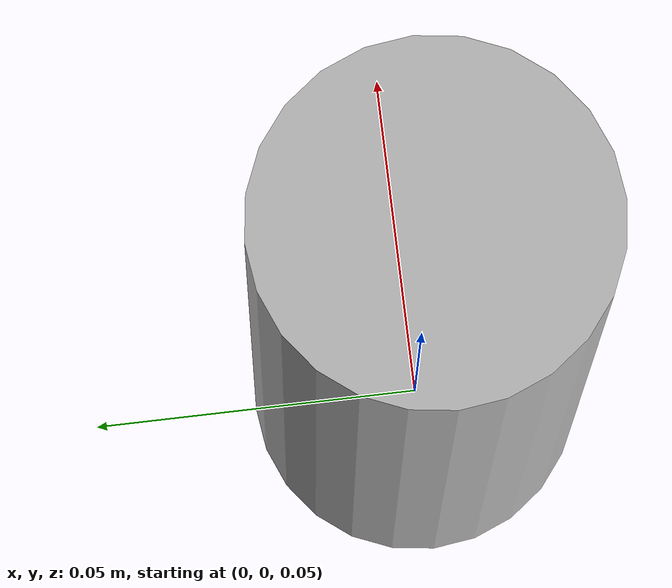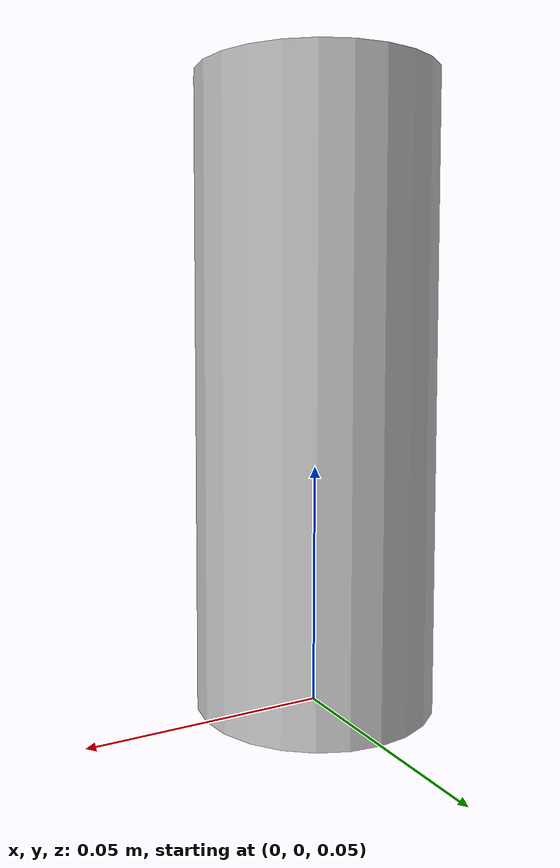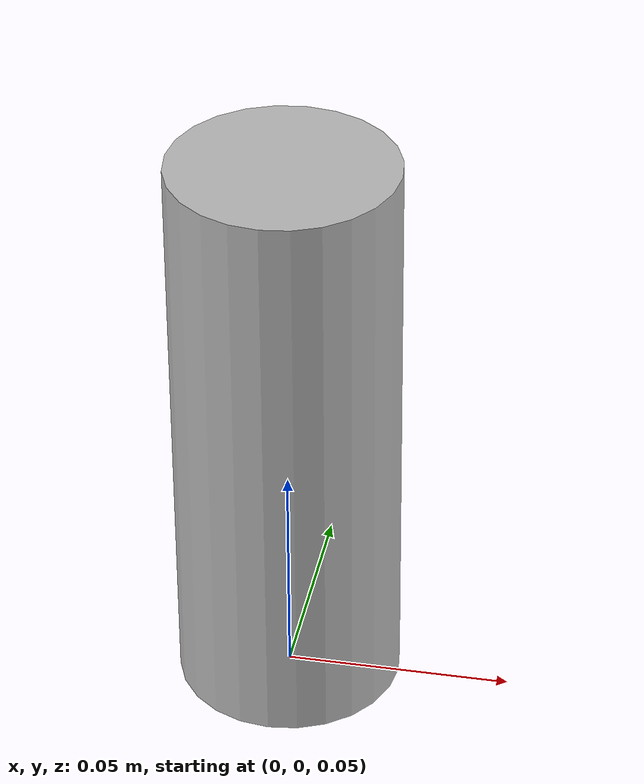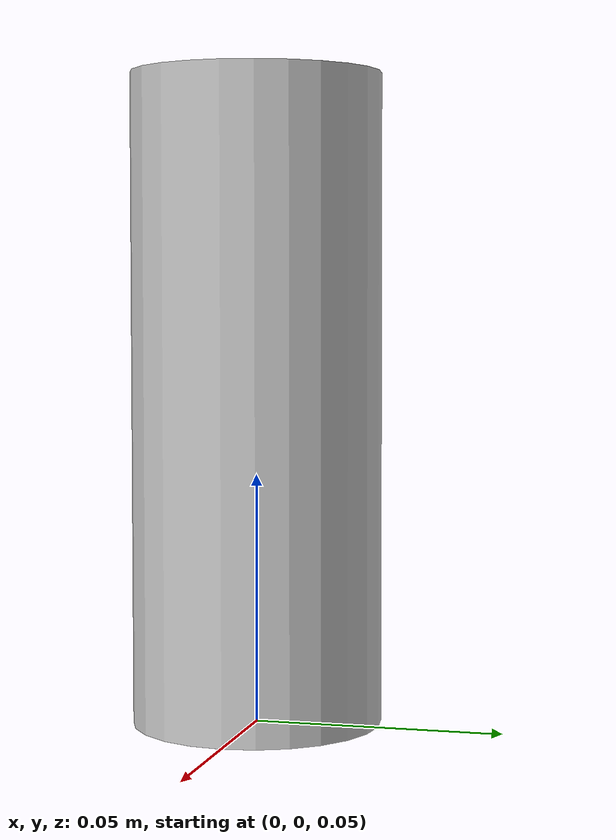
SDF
<?xml version='1.0'?>
<sdf version='1.4'>
  <model name="beer">
    <link name='link'>
      <pose>0 0 0.115 0 0 0</pose>
      <inertial>
        <mass>0.390</mass>
        <inertia>
          <ixx>0.00058</ixx>
          <ixy>0</ixy>
          <ixz>0</ixz>
          <iyy>0.00058</iyy>
          <iyz>0</iyz>
          <izz>0.00019</izz>
        </inertia>
      </inertial>
      <collision name='collision'>
        <geometry>
          <cylinder>
            <radius>0.025000</radius>
            <length>0.130000</length>
          </cylinder>
        </geometry>
        <surface>
        <friction>
          <ode>
            <mu>0.5</mu>
            <mu2>0.5</mu2>
          </ode>
        </friction>
      </surface>
      </collision>

      <visual name='visual'>
        <geometry>
          <cylinder>
            <radius>0.025000</radius>
            <length>0.130000</length>
          </cylinder>
        </geometry>

        <material>
          <script>
            <uri>model://beer/materials/scripts</uri>
            <uri>model://beer/materials/textures</uri>
            <name>Beer/Diffuse</name>
          </script>
        </material>
      </visual>
    </link>
  </model>
</sdf>
